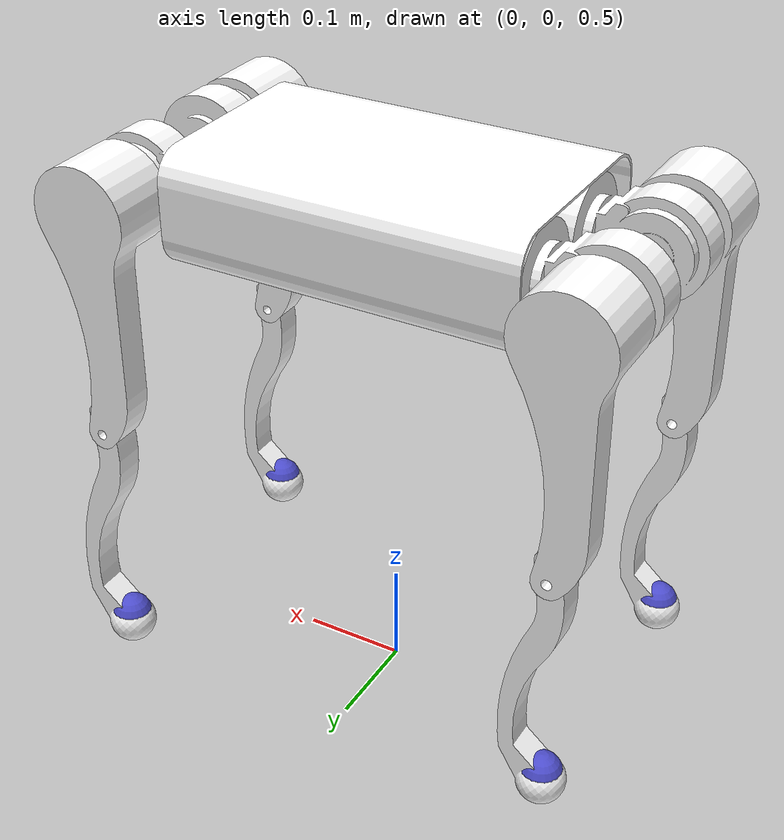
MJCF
<mujoco model="QXHZZ_quadruped">
  <compiler angle="radian" meshdir="../meshes/"/>
  <!-- 仿真参数 -->
  <option timestep="0.002" gravity="0 0 -9.81" iterations="50" tolerance="1e-10" solver="Newton" jacobian="dense" cone="pyramidal"/>
  <!-- 默认参数？？ -->
  <default>
    <joint limited="true" armature="0.01" damping="0.1" frictionloss="0.01"/>
    <geom contype="0" conaffinity="0" condim="3" friction="1.0 0.005 0.0001" rgba="0.8 0.6 0.4 1"/>
    <motor ctrllimited="true" ctrlrange="-48 48"/>
  </default>
<!-- 资产文件 -->
  <asset>
    <mesh name="base_link" file="base_link.STL"/>
    <mesh name="shenzi" file="shenzi.STL"/>
    <mesh name="yq1" file="yq1.STL"/>
    <mesh name="zh2" file="zh2.STL"/>
    <mesh name="zh3" file="zh3.STL"/>
    <mesh name="zq1" file="zq1.STL"/>
    <mesh name="yh2" file="yh2.STL"/>
    <mesh name="yh3" file="yh3.STL"/>
    <mesh name="zh1" file="zh1.STL"/>
    <mesh name="yh1" file="yh1.STL"/>
  </asset>

  <worldbody>
    <!-- Ground plane -->

    <!-- Floating base trunk -->
    <body name="trunk" pos="0 0 1.">
      <!-- Free joint for floating base -->
      <joint name="root_joint" type="free"/>

      <!-- Trunk geometry -->
      <geom type="mesh" contype="0" conaffinity="0" group="1" density="0" rgba="0.77647 0.75686 0.73725 1" mesh="base_link"/>
      <geom name="trunk_collision" type="mesh" rgba="0.77647 0.75686 0.73725 1" mesh="base_link" contype="1" conaffinity="1"/>
      <geom type="mesh" contype="0" conaffinity="0" group="1" density="0" rgba="1 1 1 1" mesh="shenzi"/>
      <geom type="mesh" rgba="1 1 1 1" mesh="shenzi" contype="1" conaffinity="1"/>

      <!-- IMU site for sensors -->
      <site name="imu_site" pos="0 0 0" size="0.01"/>

      <!-- Inertial properties for trunk (adjust mass as needed) -->
      <inertial pos="0 0 0" mass="8.0" diaginertia="0.1 0.1 0.05"/>

      <!-- Front Left Leg -->
      <body name="FL_hip" pos="0.22599 0.05 0">
        <inertial pos="-0.040294 -0.0010631 6.4131e-06" quat="0.503168 0.503168 0.496812 0.496812" mass="0.80054" diaginertia="0.000893159 0.000630935 0.000567334"/>
        <joint name="FL_hip_joint" pos="0 0 0" axis="1 0 0" range="-1.5708 1.5708"/>
        <geom type="mesh" contype="1" conaffinity="0" group="1" density="0" rgba="1 1 1 1" mesh="yq1"/>
        <geom type="mesh" rgba="1 1 1 1" mesh="yq1"/>
        <body name="FL_thigh" pos="0 0.088241 0">
          <inertial pos="0.0030535 -0.015391 -0.04077" quat="0.999453 0 -0.0330766 0" mass="1.22" diaginertia="0.00873952 0.00842409 0.00134995"/>
          <joint name="FL_thigh_joint" pos="0 0 0" axis="0 1 0" range="-1.5708 3.14159"/>
          <geom type="mesh" contype="1" conaffinity="0" group="1" density="0" rgba="1 1 1 1" mesh="zh2"/>
          <geom type="mesh" rgba="1 1 1 1" mesh="zh2"/>
          <body name="FL_calf" pos="0 0 -0.22023">
            <inertial pos="-0.00793244 -9.51164e-07 -0.134128" quat="0.706936 0.0155267 0.0155267 0.706936" mass="0.59021" diaginertia="0.0048701 0.00483361 7.50726e-05"/>
            <joint name="FL_calf_joint" pos="0 0 0" axis="0 1 0" range="-2.70526 -0.523599"/>
            <geom type="mesh" contype="1" conaffinity="0" group="1" density="0" rgba="1 1 1 1" mesh="zh3"/>
            <geom type="mesh" rgba="1 1 1 1" mesh="zh3"/>
            <!-- Foot contact sphere -->
            <geom name="FL_foot" type="sphere" size="0.02" pos="0 0 -0.22" rgba="0.3 0.3 0.8 1" contype="1" conaffinity="1" friction="1.5 0.005 0.0001"/>
          </body>
        </body>
      </body>

      <!-- Front Right Leg -->
      <body name="FR_hip" pos="0.22599 -0.05 0">
        <inertial pos="-0.040294 0.0010631 6.4131e-06" quat="0.503168 0.503168 0.496812 0.496812" mass="0.80054" diaginertia="0.000893159 0.000630935 0.000567334"/>
        <joint name="FR_hip_joint" pos="0 0 0" axis="1 0 0" range="-1.5708 1.5708"/>
        <geom type="mesh" contype="1" conaffinity="0" group="1" density="0" rgba="1 1 1 1" mesh="zq1"/>
        <geom type="mesh" rgba="1 1 1 1" mesh="zq1"/>
        <body name="FR_thigh" pos="0 -0.088241 0">
          <inertial pos="0.0030535 0.015391 -0.04077" quat="0.999453 0 -0.0330766 0" mass="1.22" diaginertia="0.00873952 0.00842409 0.00134995"/>
          <joint name="FR_thigh_joint" pos="0 0 0" axis="0 1 0" range="-1.5708 3.14159"/>
          <geom type="mesh" contype="1" conaffinity="0" group="1" density="0" rgba="1 1 1 1" mesh="yh2"/>
          <geom type="mesh" rgba="1 1 1 1" mesh="yh2"/>
          <body name="FR_calf" pos="0 0 -0.22023">
            <inertial pos="-0.00793244 9.61495e-07 -0.134128" quat="0.706936 0.0155267 0.0155267 0.706936" mass="0.59021" diaginertia="0.0048701 0.00483361 7.50726e-05"/>
            <joint name="FR_calf_joint" pos="0 0 0" axis="0 1 0" range="-2.70526 -0.523599"/>
            <geom type="mesh" contype="1" conaffinity="0" group="1" density="0" rgba="1 1 1 1" mesh="yh3"/>
            <geom type="mesh" rgba="1 1 1 1" mesh="yh3"/>
            <!-- Foot contact sphere -->
            <geom name="FR_foot" type="sphere" size="0.02" pos="0 0 -0.22" rgba="0.3 0.3 0.8 1" contype="1" conaffinity="1" friction="1.5 0.005 0.0001"/>
          </body>
        </body>
      </body>

      <!-- Rear Left Leg -->
      <body name="RL_hip" pos="-0.22599 0.05 0">
        <inertial pos="0.040294 -0.0010631 6.4131e-06" quat="0.503168 0.503168 0.496812 0.496812" mass="0.80054" diaginertia="0.000893159 0.000630935 0.000567334"/>
        <joint name="RL_hip_joint" pos="0 0 0" axis="1 0 0" range="-1.5708 1.5708"/>
        <geom type="mesh" contype="1" conaffinity="0" group="1" density="0" rgba="1 1 1 1" mesh="zh1"/>
        <geom type="mesh" rgba="1 1 1 1" mesh="zh1"/>
        <body name="RL_thigh" pos="0 0.088241 0">
          <inertial pos="-0.0030535 -0.015391 -0.04077" quat="0.999453 0 -0.0330766 0" mass="1.22" diaginertia="0.00873952 0.00842409 0.00134995"/>
          <joint name="RL_thigh_joint" pos="0 0 0" axis="0 1 0" range="-1.5708 3.14159"/>
          <geom type="mesh" contype="1" conaffinity="0" group="1" density="0" rgba="1 1 1 1" mesh="zh2"/>
          <geom type="mesh" rgba="1 1 1 1" mesh="zh2"/>
          <body name="RL_calf" pos="0 0 -0.22023">
            <inertial pos="0.00793244 -9.61495e-07 -0.134128" quat="0.706757 0.0222331 0.0222331 0.706757" mass="0.59021" diaginertia="0.0048701 0.00484331 6.53701e-05"/>
            <joint name="RL_calf_joint" pos="0 0 0" axis="0 1 0" range="-2.70526 -0.523599"/>
            <geom type="mesh" contype="1" conaffinity="0" group="1" density="0" rgba="1 1 1 1" mesh="zh3"/>
            <geom type="mesh" rgba="1 1 1 1" mesh="zh3"/>
            <!-- Foot contact sphere -->
            <geom name="RL_foot" type="sphere" size="0.02" pos="0 0 -0.22" rgba="0.3 0.3 0.8 1" contype="1" conaffinity="1" friction="1.5 0.005 0.0001"/>
          </body>
        </body>
      </body>

      <!-- Rear Right Leg -->
      <body name="RR_hip" pos="-0.22599 -0.05 0">
        <inertial pos="0.040294 0.0010631 6.4131e-06" quat="0.503168 0.503168 0.496812 0.496812" mass="0.80054" diaginertia="0.000893159 0.000630935 0.000567334"/>
        <joint name="RR_hip_joint" pos="0 0 0" axis="1 0 0" range="-1.5708 1.5708"/>
        <geom type="mesh" contype="1" conaffinity="0" group="1" density="0" rgba="1 1 1 1" mesh="yh1"/>
        <geom type="mesh" rgba="1 1 1 1" mesh="yh1"/>
        <body name="RR_thigh" pos="0 -0.088241 0">
          <inertial pos="-0.0030535 0.015391 -0.04077" quat="0.999453 0 -0.0330766 0" mass="1.22" diaginertia="0.00873952 0.00842409 0.00134995"/>
          <joint name="RR_thigh_joint" pos="0 0 0" axis="0 1 0" range="-1.5708 3.14159"/>
          <geom type="mesh" contype="1" conaffinity="0" group="1" density="0" rgba="1 1 1 1" mesh="yh2"/>
          <geom type="mesh" rgba="1 1 1 1" mesh="yh2"/>
          <body name="RR_calf" pos="0 0 -0.22023">
            <inertial pos="0.00793244 9.51164e-07 -0.134128" quat="0.706757 0.0222331 0.0222331 0.706757" mass="0.59021" diaginertia="0.0048701 0.00484331 6.53701e-05"/>
            <joint name="RR_calf_joint" pos="0 0 0" axis="0 1 0" range="-2.70526 -0.523599"/>
            <geom type="mesh" contype="1" conaffinity="0" group="1" density="0" rgba="1 1 1 1" mesh="yh3"/>
            <geom type="mesh" rgba="1 1 1 1" mesh="yh3"/>
            <!-- Foot contact sphere -->
            <geom name="RR_foot" type="sphere" size="0.02" pos="0 0 -0.22" rgba="0.3 0.3 0.8 1" contype="1" conaffinity="1" friction="1.5 0.005 0.0001"/>
          </body>
        </body>
      </body>
    </body>
  </worldbody>

  <actuator>
    <motor name="FL_hip_motor" joint="FL_hip_joint" ctrlrange="-48 48" ctrllimited="true"/>
    <motor name="FL_thigh_motor" joint="FL_thigh_joint" ctrlrange="-48 48" ctrllimited="true"/>
    <motor name="FL_calf_motor" joint="FL_calf_joint" ctrlrange="-48 48" ctrllimited="true"/>
    <motor name="FR_hip_motor" joint="FR_hip_joint" ctrlrange="-48 48" ctrllimited="true"/>
    <motor name="FR_thigh_motor" joint="FR_thigh_joint" ctrlrange="-48 48" ctrllimited="true"/>
    <motor name="FR_calf_motor" joint="FR_calf_joint" ctrlrange="-48 48" ctrllimited="true"/>
    <motor name="RL_hip_motor" joint="RL_hip_joint" ctrlrange="-48 48" ctrllimited="true"/>
    <motor name="RL_thigh_motor" joint="RL_thigh_joint" ctrlrange="-48 48" ctrllimited="true"/>
    <motor name="RL_calf_motor" joint="RL_calf_joint" ctrlrange="-48 48" ctrllimited="true"/>
    <motor name="RR_hip_motor" joint="RR_hip_joint" ctrlrange="-48 48" ctrllimited="true"/>
    <motor name="RR_thigh_motor" joint="RR_thigh_joint" ctrlrange="-48 48" ctrllimited="true"/>
    <motor name="RR_calf_motor" joint="RR_calf_joint" ctrlrange="-48 48" ctrllimited="true"/>
  </actuator>

  <!-- Sensors -->
  <sensor>
    <accelerometer name="imu_accel" site="imu_site"/>
    <gyro name="imu_gyro" site="imu_site"/>
  </sensor>
</mujoco>
